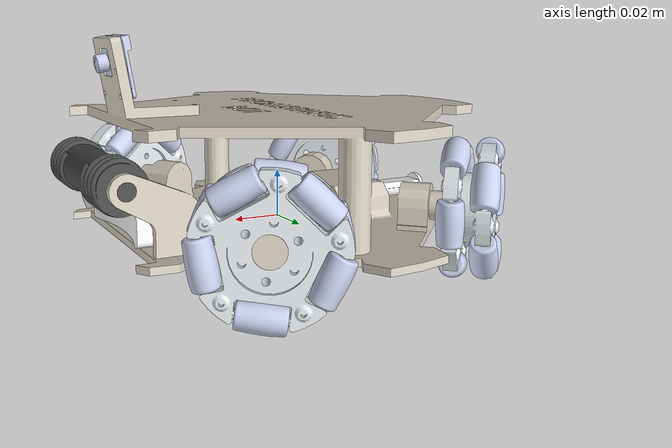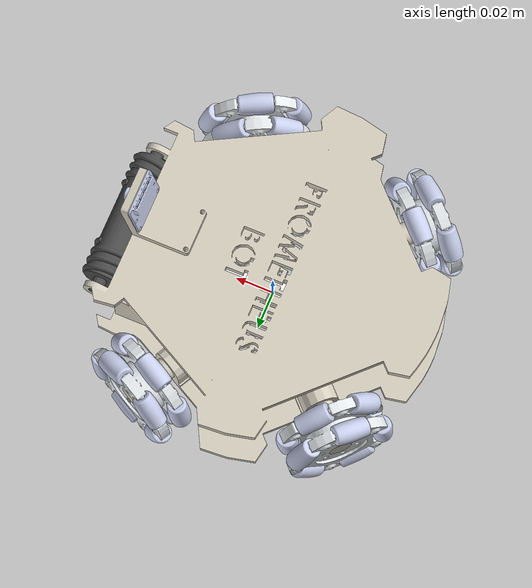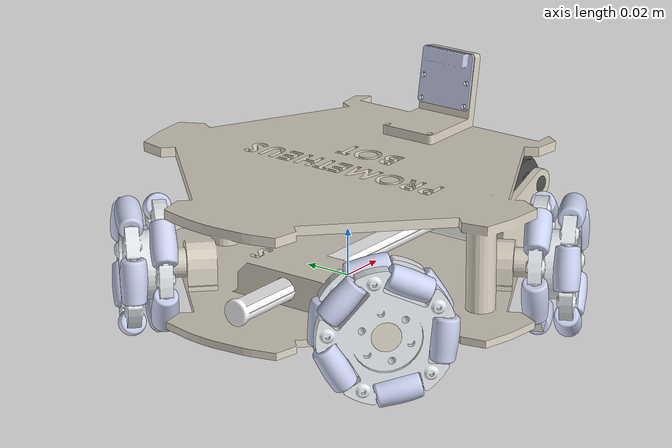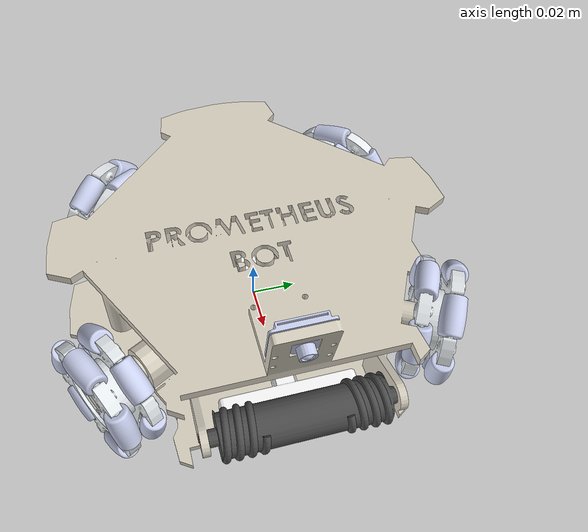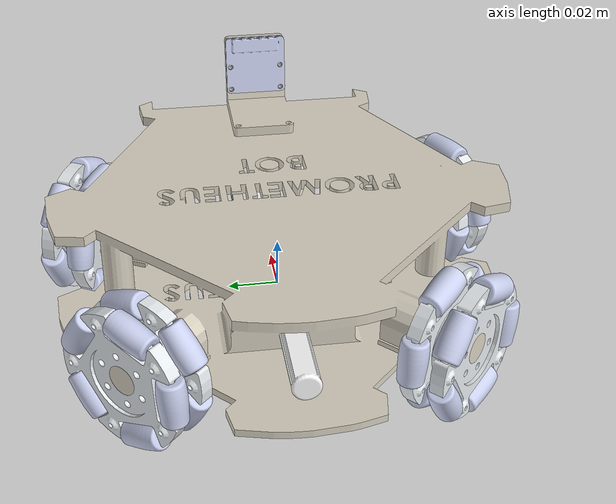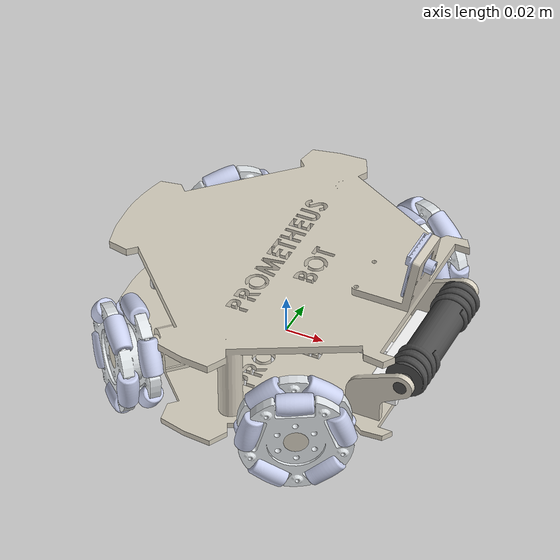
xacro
<?xml version="1.0" encoding="utf-8"?>
<robot
  name="prometheus_final" xmlns:xacro="http://www.ros.org/wiki/xacro">

  <!--Gazebo ROS Control Plugin-->
  <gazebo>
    <plugin name="gazebo_ros_control" filename="libgazebo_ros_control.so">
      <robotNamespace>prometheus_final</robotNamespace>
    </plugin>
    <!--BASE LINK SETTING  -->
  <plugin name="omni_plannar_steering" filename="libgazebo_ros_planar_move.so">
      <commandTopic>cmd_vel</commandTopic>
      <odometryTopic>odom</odometryTopic>
      <odometryFrame>odom</odometryFrame>
      <odometryRate>20.0</odometryRate>
      <robotBaseFrame>base_link</robotBaseFrame>
  </plugin>
  </gazebo>
  <!--BASE LINK SETTING-->
  <link
    name="base_link">
    <inertial>
      <origin
        xyz="-0.00350048179561457 -8.82625420624006E-05 0.0208952595374823"
        rpy="0 0 0" />
      <mass
        value="1.28487468500406" />
      <inertia
        ixx="0.00162139959850944"
        ixy="1.09782114163103E-07"
        ixz="1.64762548607904E-05"
        iyy="0.00167009509390206"
        iyz="2.53483283598115E-08"
        izz="0.00325167012714563" />
    </inertial>
    <visual>
      <origin
        xyz="0 0 0"
        rpy="0 0 0" />
      <geometry>
        <mesh
          filename="package://prometheus_final/meshes/base_link.STL" />
      </geometry>
      <material
        name="">
        <color
          rgba="0.843137254901961 0.815686274509804 0.752941176470588 1" />
      </material>
    </visual>
    <collision>
      <origin
        xyz="0 0 0"
        rpy="0 0 0" />
      <geometry>
        <mesh
          filename="package://prometheus_final/meshes/base_link.STL" />
      </geometry>
    </collision>
  </link>

  <!--RIGHT FRONT LINK SETTINGS-->
  <link
    name="rf_wheel">
    <inertial>
      <origin
        xyz="-5.130618152549E-14 -0.00900489911686289 1.32199806657241E-13"
        rpy="0 0 0" />
      <mass
        value="0.0389563583196813" />
      <inertia
        ixx="6.96753570378058E-06"
        ixy="-1.3679582098157E-19"
        ixz="5.62165614913027E-20"
        iyy="1.37135800312478E-05"
        iyz="-5.94756856680412E-20"
        izz="6.96753570378055E-06" />
    </inertial>
    <visual>
      <origin
        xyz="0 0 0"
        rpy="0 0 0" />
      <geometry>
        <mesh
          filename="package://prometheus_final/meshes/rf_wheel.STL" />
      </geometry>
      <material
        name="">
        <color
          rgba="0.898039215686275 0.917647058823529 0.929411764705882 1" />
      </material>
    </visual>
    <collision>
      <origin
        xyz="0 0 0"
        rpy="0 0 0" />
      <geometry>
        <mesh
          filename="package://prometheus_final/meshes/rf_wheel.STL" />
      </geometry>
    </collision>
  </link>
  <joint
    name="rf_joint"
    type="continuous">
    <origin
      xyz="0.0446476694394124 -0.0818269917959932 0.00899999999994602"
      rpy="0 0 -2.65290046303138" />
    <parent
      link="base_link" />
    <child
      link="rf_wheel" />
    <axis
      xyz="0 1 0" />
  </joint>
  <!--RIGHT FRONT WHEELS ROLLERS-->
  <link
    name="rf_roller_1">
    <inertial>
      <origin
        xyz="-2.19774625290214E-07 -0.000147339529491142 -4.60670548013686E-07"
        rpy="0 0 0" />
      <mass
        value="0.00139539341760775" />
      <inertia
        ixx="4.54070236634262E-08"
        ixy="-1.33944200874802E-12"
        ixz="-1.11184567600862E-11"
        iyy="2.13340721674892E-08"
        iyz="-5.08868938614119E-13"
        izz="4.53962621357603E-08" />
    </inertial>
    <visual>
      <origin
        xyz="0 0 0"
        rpy="0 0 0" />
      <geometry>
        <mesh
          filename="package://prometheus_final/meshes/rf_roller_1.STL" />
      </geometry>
      <material
        name="">
        <color
          rgba="0.796078431372549 0.823529411764706 0.937254901960784 1" />
      </material>
    </visual>
    <collision>
      <origin
        xyz="0 0 0"
        rpy="0 0 0" />
      <geometry>
        <mesh
          filename="package://prometheus_final/meshes/rf_roller_1.STL" />
      </geometry>
    </collision>
  </link>
  <joint
    name="rf_roller_1j"
    type="continuous">
    <origin
      xyz="-0.021524 -0.00275 0.0076149"
      rpy="-1.2307 0 1.5708" />
    <parent
      link="rf_wheel" />
    <child
      link="rf_roller_1" />
    <axis
      xyz="0 -1 0" />
  </joint>
  <link
    name="rf_roller_2">
    <inertial>
      <origin
        xyz="-1.0112327862577E-07 -0.000147338253197862 5.21745965931242E-07"
        rpy="0 0 0" />
      <mass
        value="0.00139539320014803" />
      <inertia
        ixx="4.5414010770903E-08"
        ixy="8.53165296361186E-13"
        ixz="4.89825446118662E-13"
        iyy="2.13340725356041E-08"
        iyz="1.21294309521856E-12"
        izz="4.53893457380149E-08" />
    </inertial>
    <visual>
      <origin
        xyz="0 0 0"
        rpy="0 0 0" />
      <geometry>
        <mesh
          filename="package://prometheus_final/meshes/rf_roller_2.STL" />
      </geometry>
      <material
        name="">
        <color
          rgba="0.796078431372549 0.823529411764706 0.937254901960784 1" />
      </material>
    </visual>
    <collision>
      <origin
        xyz="0 0 0"
        rpy="0 0 0" />
      <geometry>
        <mesh
          filename="package://prometheus_final/meshes/rf_roller_2.STL" />
      </geometry>
    </collision>
  </link>
  <joint
    name="rf_roller_2j"
    type="continuous">
    <origin
      xyz="-0.0138934086520441 -0.00275000000000473 -0.0181171202364986"
      rpy="-2.48738422080527 0 1.57079632679491" />
    <parent
      link="rf_wheel" />
    <child
      link="rf_roller_2" />
    <axis
      xyz="0 -1 0" />
  </joint>
  <link
    name="rf_roller_3">
    <inertial>
      <origin
        xyz="-3.60904993529365E-07 -0.000147338301006078 -3.78911165679896E-07"
        rpy="0 0 0" />
      <mass
        value="0.00139539409779762" />
      <inertia
        ixx="4.53991390499127E-08"
        ixy="-1.45967790069784E-12"
        ixz="-1.20945100872979E-11"
        iyy="2.13340839309074E-08"
        iyz="-5.73483635357382E-14"
        izz="4.54042338686752E-08" />
    </inertial>
    <visual>
      <origin
        xyz="0 0 0"
        rpy="0 0 0" />
      <geometry>
        <mesh
          filename="package://prometheus_final/meshes/rf_roller_3.STL" />
      </geometry>
      <material
        name="">
        <color
          rgba="0.796078431372549 0.823529411764706 0.937254901960784 1" />
      </material>
    </visual>
    <collision>
      <origin
        xyz="0 0 0"
        rpy="0 0 0" />
      <geometry>
        <mesh
          filename="package://prometheus_final/meshes/rf_roller_3.STL" />
      </geometry>
    </collision>
  </link>
  <joint
    name="rf_roller_3j"
    type="continuous">
    <origin
      xyz="0.012937 -0.00275 -0.018812"
      rpy="2.5187 0.23999 1.4017" />
    <parent
      link="rf_wheel" />
    <child
      link="rf_roller_3" />
    <axis
      xyz="0 -1 0" />
  </joint>
  <link
    name="rf_roller_4">
    <inertial>
      <origin
        xyz="-5.94431460720912E-08 -0.000147340426069675 5.27040239700627E-07"
        rpy="0 0 0" />
      <mass
        value="0.00139539437810918" />
      <inertia
        ixx="4.54140436406743E-08"
        ixy="9.02091953082696E-13"
        ixz="-4.71522420103581E-13"
        iyy="2.13340729089582E-08"
        iyz="1.15612066343412E-12"
        izz="4.53892659018487E-08" />
    </inertial>
    <visual>
      <origin
        xyz="0 0 0"
        rpy="0 0 0" />
      <geometry>
        <mesh
          filename="package://prometheus_final/meshes/rf_roller_4.STL" />
      </geometry>
      <material
        name="">
        <color
          rgba="0.796078431372549 0.823529411764706 0.937254901960784 1" />
      </material>
    </visual>
    <collision>
      <origin
        xyz="0 0 0"
        rpy="0 0 0" />
      <geometry>
        <mesh
          filename="package://prometheus_final/meshes/rf_roller_4.STL" />
      </geometry>
    </collision>
  </link>
  <joint
    name="rf_roller_4j"
    type="continuous">
    <origin
      xyz="0.021889 -0.00275 0.0064907"
      rpy="1.8591 0 -1.5708" />
    <parent
      link="rf_wheel" />
    <child
      link="rf_roller_4" />
    <axis
      xyz="0 -1 0" />
  </joint>
  <link
    name="rf_roller_5">
    <inertial>
      <origin
        xyz="3.00392523938653E-07 -0.000147338673224431 4.14398274140027E-07"
        rpy="0 0 0" />
      <mass
        value="0.00139539350773946" />
      <inertia
        ixx="4.54026625777786E-08"
        ixy="1.4151249697577E-12"
        ixz="-1.23035423408623E-11"
        iyy="2.13340777554219E-08"
        iyz="2.57363369916583E-13"
        izz="4.54006605767438E-08" />
    </inertial>
    <visual>
      <origin
        xyz="0 0 0"
        rpy="0 0 0" />
      <geometry>
        <mesh
          filename="package://prometheus_final/meshes/rf_roller_5.STL" />
      </geometry>
      <material
        name="">
        <color
          rgba="0.796078431372549 0.823529411764706 0.937254901960784 1" />
      </material>
    </visual>
    <collision>
      <origin
        xyz="0 0 0"
        rpy="0 0 0" />
      <geometry>
        <mesh
          filename="package://prometheus_final/meshes/rf_roller_5.STL" />
      </geometry>
    </collision>
  </link>
  <joint
    name="rf_roller_5j"
    type="continuous">
    <origin
      xyz="0.00059103 -0.00275 0.022823"
      rpy="0.02589 0 1.5708" />
    <parent
      link="rf_wheel" />
    <child
      link="rf_roller_5" />
    <axis
      xyz="0 -1 0" />
  </joint>
  <link
    name="rf_roller_6">
    <inertial>
      <origin
        xyz="-2.24206414115025E-07 0.000147338882780845 -4.76189316020448E-07"
        rpy="0 0 0" />
      <mass
        value="0.00139539316359108" />
      <inertia
        ixx="4.54121274202642E-08"
        ixy="-5.13618512320941E-13"
        ixz="-6.55134727207E-12"
        iyy="2.13340693516855E-08"
        iyz="1.37782446977762E-12"
        izz="4.53911967490346E-08" />
    </inertial>
    <visual>
      <origin
        xyz="0 0 0"
        rpy="0 0 0" />
      <geometry>
        <mesh
          filename="package://prometheus_final/meshes/rf_roller_6.STL" />
      </geometry>
      <material
        name="">
        <color
          rgba="0.796078431372549 0.823529411764706 0.937254901960784 1" />
      </material>
    </visual>
    <collision>
      <origin
        xyz="0 0 0"
        rpy="0 0 0" />
      <geometry>
        <mesh
          filename="package://prometheus_final/meshes/rf_roller_6.STL" />
      </geometry>
    </collision>
  </link>
  <joint
    name="rf_roller_6j"
    type="continuous">
    <origin
      xyz="-0.012937 -0.01525 0.018812"
      rpy="-0.60243 0 1.5708" />
    <parent
      link="rf_wheel" />
    <child
      link="rf_roller_6" />
    <axis
      xyz="0 -1 0" />
  </joint>
  <link
    name="rf_roller_7">
    <inertial>
      <origin
        xyz="2.24172873514172E-07 0.000147339603903535 -4.58221249416413E-07"
        rpy="0 0 0" />
      <mass
        value="0.00139539237686729" />
      <inertia
        ixx="4.54060851311822E-08"
        ixy="-1.36162812988169E-12"
        ixz="1.14928719505028E-11"
        iyy="2.13340594594364E-08"
        iyz="4.63979733799799E-13"
        izz="4.53971630630933E-08" />
    </inertial>
    <visual>
      <origin
        xyz="0 0 0"
        rpy="0 0 0" />
      <geometry>
        <mesh
          filename="package://prometheus_final/meshes/rf_roller_7.STL" />
      </geometry>
      <material
        name="">
        <color
          rgba="0.796078431372549 0.823529411764706 0.937254901960784 1" />
      </material>
    </visual>
    <collision>
      <origin
        xyz="0 0 0"
        rpy="0 0 0" />
      <geometry>
        <mesh
          filename="package://prometheus_final/meshes/rf_roller_7.STL" />
      </geometry>
    </collision>
  </link>
  <joint
    name="rf_roller_7j"
    type="continuous">
    <origin
      xyz="-0.021889 -0.01525 -0.0064907"
      rpy="-1.8591 0 1.5708" />
    <parent
      link="rf_wheel" />
    <child
      link="rf_roller_7" />
    <axis
      xyz="0 -1 0" />
  </joint>
  <link
    name="rf_roller_8">
    <inertial>
      <origin
        xyz="-3.84714740619962E-07 0.000147339912727418 -3.68398216099575E-07"
        rpy="0 0 0" />
      <mass
        value="0.00139539480329269" />
      <inertia
        ixx="4.54042294858E-08"
        ixy="5.56107421041032E-14"
        ixz="-1.21360896406017E-11"
        iyy="2.13340802641008E-08"
        iyz="1.46957323599683E-12"
        izz="4.53991174041401E-08" />
    </inertial>
    <visual>
      <origin
        xyz="0 0 0"
        rpy="0 0 0" />
      <geometry>
        <mesh
          filename="package://prometheus_final/meshes/rf_roller_8.STL" />
      </geometry>
      <material
        name="">
        <color
          rgba="0.796078431372549 0.823529411764706 0.937254901960784 1" />
      </material>
    </visual>
    <collision>
      <origin
        xyz="0 0 0"
        rpy="0 0 0" />
      <geometry>
        <mesh
          filename="package://prometheus_final/meshes/rf_roller_8.STL" />
      </geometry>
    </collision>
  </link>
  <joint
    name="rf_roller_8j"
    type="continuous">
    <origin
      xyz="-0.00059103 -0.01525 -0.022823"
      rpy="-3.1157 0 1.5708" />
    <parent
      link="rf_wheel" />
    <child
      link="rf_roller_8" />
    <axis
      xyz="0 -1 0" />
  </joint>
  <link
    name="rf_roller_9">
    <inertial>
      <origin
        xyz="4.11971687513946E-07 0.000147339837026139 -3.37105088156486E-07"
        rpy="0 0 0" />
      <mass
        value="0.00139539531920026" />
      <inertia
        ixx="4.53966365561195E-08"
        ixy="-1.46298482158066E-12"
        ixz="1.13411512356184E-11"
        iyy="2.13340869654702E-08"
        iyz="-1.03622497362521E-13"
        izz="4.54067294937751E-08" />
    </inertial>
    <visual>
      <origin
        xyz="0 0 0"
        rpy="0 0 0" />
      <geometry>
        <mesh
          filename="package://prometheus_final/meshes/rf_roller_9.STL" />
      </geometry>
      <material
        name="">
        <color
          rgba="0.796078431372549 0.823529411764706 0.937254901960784 1" />
      </material>
    </visual>
    <collision>
      <origin
        xyz="0 0 0"
        rpy="0 0 0" />
      <geometry>
        <mesh
          filename="package://prometheus_final/meshes/rf_roller_9.STL" />
      </geometry>
    </collision>
  </link>
  <joint
    name="rf_roller_9j"
    type="continuous">
    <origin
      xyz="0.021524 -0.01525 -0.0076149"
      rpy="1.9108 0 1.5708" />
    <parent
      link="rf_wheel" />
    <child
      link="rf_roller_9" />
    <axis
      xyz="0 -1 0" />
  </joint>
  <link
    name="rf_roller_10">
    <inertial>
      <origin
        xyz="3.65247850991901E-08 0.00014733817321276 5.23246340394801E-07"
        rpy="0 0 0" />
      <mass
        value="0.00139539458442033" />
      <inertia
        ixx="4.54140128786662E-08"
        ixy="9.3155322354689E-13"
        ixz="1.16747613732194E-12"
        iyy="2.13340901435685E-08"
        iyz="-1.12530735687212E-12"
        izz="4.53893827266731E-08" />
    </inertial>
    <visual>
      <origin
        xyz="0 0 0"
        rpy="0 0 0" />
      <geometry>
        <mesh
          filename="package://prometheus_final/meshes/rf_roller_10.STL" />
      </geometry>
      <material
        name="">
        <color
          rgba="0.796078431372549 0.823529411764706 0.937254901960784 1" />
      </material>
    </visual>
    <collision>
      <origin
        xyz="0 0 0"
        rpy="0 0 0" />
      <geometry>
        <mesh
          filename="package://prometheus_final/meshes/rf_roller_10.STL" />
      </geometry>
    </collision>
  </link>
  <joint
    name="rf_roller_10j"
    type="continuous">
    <origin
      xyz="0.013893 -0.01525 0.018117"
      rpy="0.65421 0 1.5708" />
    <parent
      link="rf_wheel" />
    <child
      link="rf_roller_10" />
    <axis
      xyz="0 -1 0" />
  </joint>
  <!--LEFT FRONT LINK SETTINGS-->
  <link
    name="lf_wheel">
    <inertial>
      <origin
        xyz="3.53342355374764E-13 -0.00900489911745525 -3.03562730508133E-13"
        rpy="0 0 0" />
      <mass
        value="0.0389563583196813" />
      <inertia
        ixx="6.96753570378056E-06"
        ixy="7.83505476210228E-21"
        ixz="5.71206203225495E-20"
        iyy="1.37135800312478E-05"
        iyz="-6.74076115452939E-21"
        izz="6.96753570378056E-06" />
    </inertial>
    <visual>
      <origin
        xyz="0 0 0"
        rpy="0 0 0" />
      <geometry>
        <mesh
          filename="package://prometheus_final/meshes/lf_wheel.STL" />
      </geometry>
      <material
        name="">
        <color
          rgba="0.898039215686275 0.917647058823529 0.929411764705882 1" />
      </material>
    </visual>
    <collision>
      <origin
        xyz="0 0 0"
        rpy="0 0 0" />
      <geometry>
        <mesh
          filename="package://prometheus_final/meshes/lf_wheel.STL" />
      </geometry>
    </collision>
  </link>
  <joint
    name="lf_joint"
    type="continuous">
    <origin
      xyz="0.0446476694394707 0.0816033915726884 0.00900000000000112"
      rpy="0 0 -0.488692190558411" />
    <parent
      link="base_link" />
    <child
      link="lf_wheel" />
    <axis
      xyz="0 1 0" />
  </joint>
  <!--LEFT FRONT WHEEL ROLLERS-->
  <link
    name="lf_roller_1">
    <inertial>
      <origin
        xyz="-2.23983531777439E-07 -0.000147338259847404 -4.71888230269002E-07"
        rpy="0 0 0" />
      <mass
        value="0.00139539320327497" />
      <inertia
        ixx="4.54062538059696E-08"
        ixy="-1.38133537583309E-12"
        ixz="-1.14553099067102E-11"
        iyy="2.13340741537148E-08"
        iyz="-4.85304820499261E-13"
        izz="4.53970898490008E-08" />
    </inertial>
    <visual>
      <origin
        xyz="0 0 0"
        rpy="0 0 0" />
      <geometry>
        <mesh
          filename="package://prometheus_final/meshes/lf_roller_1.STL" />
      </geometry>
      <material
        name="">
        <color
          rgba="0.796078431372549 0.823529411764706 0.937254901960784 1" />
      </material>
    </visual>
    <collision>
      <origin
        xyz="0 0 0"
        rpy="0 0 0" />
      <geometry>
        <mesh
          filename="package://prometheus_final/meshes/lf_roller_1.STL" />
      </geometry>
    </collision>
  </link>
  <joint
    name="lf_roller_1j"
    type="continuous">
    <origin
      xyz="-0.0156999286975126 -0.00274999999999995 0.0165761602468557"
      rpy="-0.758256821058521 0 1.5707963267949" />
    <parent
      link="lf_wheel" />
    <child
      link="lf_roller_1" />
    <axis
      xyz="0 -1 0" />
  </joint>
  <link
    name="lf_roller_2">
    <inertial>
      <origin
        xyz="6.09835875409193E-08 -0.000147340264213591 -5.31926638132341E-07"
        rpy="0 0 0" />
      <mass
        value="0.00139539473216151" />
      <inertia
        ixx="4.54140653184597E-08"
        ixy="-9.06279329768249E-13"
        ixz="-4.66345053331612E-13"
        iyy="2.13340766254018E-08"
        iyz="-1.16463834938261E-12"
        izz="4.53892694934369E-08" />
    </inertial>
    <visual>
      <origin
        xyz="0 0 0"
        rpy="0 0 0" />
      <geometry>
        <mesh
          filename="package://prometheus_final/meshes/lf_roller_2.STL" />
      </geometry>
      <material
        name="">
        <color
          rgba="0.796078431372549 0.823529411764706 0.937254901960784 1" />
      </material>
    </visual>
    <collision>
      <origin
        xyz="0 0 0"
        rpy="0 0 0" />
      <geometry>
        <mesh
          filename="package://prometheus_final/meshes/lf_roller_2.STL" />
      </geometry>
    </collision>
  </link>
  <joint
    name="lf_roller_2j"
    type="continuous">
    <origin
      xyz="-0.0206164099959305 -0.00274999999999986 -0.00980920427537604"
      rpy="-2.01489388249438 0 1.5707963267949" />
    <parent
      link="lf_wheel" />
    <child
      link="lf_roller_2" />
    <axis
      xyz="0 -1 0" />
  </joint>
  <link
    name="lf_roller_3">
    <inertial>
      <origin
        xyz="5.06713228903832E-07 -0.000147338910557238 7.34481696851308E-08"
        rpy="0 0 0" />
      <mass
        value="0.00139539309324117" />
      <inertia
        ixx="4.53893175610577E-08"
        ixy="1.16400570424861E-12"
        ixz="-3.43935044062127E-13"
        iyy="2.13340713590343E-08"
        iyz="-8.48749353651685E-13"
        izz="4.5413983167911E-08" />
    </inertial>
    <visual>
      <origin
        xyz="0 0 0"
        rpy="0 0 0" />
      <geometry>
        <mesh
          filename="package://prometheus_final/meshes/lf_roller_3.STL" />
      </geometry>
      <material
        name="">
        <color
          rgba="0.796078431372549 0.823529411764706 0.937254901960784 1" />
      </material>
    </visual>
    <collision>
      <origin
        xyz="0 0 0"
        rpy="0 0 0" />
      <geometry>
        <mesh
          filename="package://prometheus_final/meshes/lf_roller_3.STL" />
      </geometry>
    </collision>
  </link>
  <joint
    name="lf_roller_3j"
    type="continuous">
    <origin
      xyz="0.0029582865940241 -0.00274999999999989 -0.0226385818916302"
      rpy="3.01134981689428 -0.068205684093041 1.57972303921801" />
    <parent
      link="lf_wheel" />
    <child
      link="lf_roller_3" />
    <axis
      xyz="0 -1 0" />
  </joint>
  <link
    name="lf_roller_4">
    <inertial>
      <origin
        xyz="-2.94458208621728E-07 -0.000147340487392178 4.55379331035233E-07"
        rpy="0 0 0" />
      <mass
        value="0.00139539666748033" />
      <inertia
        ixx="4.54088054612058E-08"
        ixy="2.47047768836041E-13"
        ixz="1.02329048156636E-11"
        iyy="2.13340962106202E-08"
        iyz="1.45558263684776E-12"
        izz="4.53945923266177E-08" />
    </inertial>
    <visual>
      <origin
        xyz="0 0 0"
        rpy="0 0 0" />
      <geometry>
        <mesh
          filename="package://prometheus_final/meshes/lf_roller_4.STL" />
      </geometry>
      <material
        name="">
        <color
          rgba="0.796078431372549 0.823529411764706 0.937254901960784 1" />
      </material>
    </visual>
    <collision>
      <origin
        xyz="0 0 0"
        rpy="0 0 0" />
      <geometry>
        <mesh
          filename="package://prometheus_final/meshes/lf_roller_4.STL" />
      </geometry>
    </collision>
  </link>
  <joint
    name="lf_roller_4j"
    type="continuous">
    <origin
      xyz="0.0224447316595033 -0.00274999999999997 -0.0041822087907489"
      rpy="1.75501730181332 0 1.57079632679488" />
    <parent
      link="lf_wheel" />
    <child
      link="lf_roller_4" />
    <axis
      xyz="0 -1 0" />
  </joint>
  <link
    name="lf_roller_5">
    <inertial>
      <origin
        xyz="2.71609476687473E-07 -0.000147339699725385 4.81130514942696E-07"
        rpy="0 0 0" />
      <mass
        value="0.00139539574968426" />
      <inertia
        ixx="4.54048587135436E-08"
        ixy="1.4514290827857E-12"
        ixz="-1.20259903282334E-11"
        iyy="2.13340865732076E-08"
        iyz="4.10818361691801E-13"
        izz="4.53985546275884E-08" />
    </inertial>
    <visual>
      <origin
        xyz="0 0 0"
        rpy="0 0 0" />
      <geometry>
        <mesh
          filename="package://prometheus_final/meshes/lf_roller_5.STL" />
      </geometry>
      <material
        name="">
        <color
          rgba="0.796078431372549 0.823529411764706 0.937254901960784 1" />
      </material>
    </visual>
    <collision>
      <origin
        xyz="0 0 0"
        rpy="0 0 0" />
      <geometry>
        <mesh
          filename="package://prometheus_final/meshes/lf_roller_5.STL" />
      </geometry>
    </collision>
  </link>
  <joint
    name="lf_roller_5j"
    type="continuous">
    <origin
      xyz="0.0109133204399212 -0.00274999999999995 0.020053834710899"
      rpy="0.498380240377435 0 1.5707963267949" />
    <parent
      link="lf_wheel" />
    <child
      link="lf_roller_5" />
    <axis
      xyz="0 -1 0" />
  </joint>
  <link
    name="lf_roller_6">
    <inertial>
      <origin
        xyz="-3.9926691938752E-07 0.000147336301084378 -3.80752566461751E-07"
        rpy="0 0 0" />
      <mass
        value="0.00139539533686545" />
      <inertia
        ixx="4.54042363405629E-08"
        ixy="5.62238169144401E-14"
        ixz="-1.21570728550476E-11"
        iyy="2.13340824823764E-08"
        iyz="1.47895570605167E-12"
        izz="4.5399123192049E-08" />
    </inertial>
    <visual>
      <origin
        xyz="0 0 0"
        rpy="0 0 0" />
      <geometry>
        <mesh
          filename="package://prometheus_final/meshes/lf_roller_6.STL" />
      </geometry>
      <material
        name="">
        <color
          rgba="0.796078431372549 0.823529411764706 0.937254901960784 1" />
      </material>
    </visual>
    <collision>
      <origin
        xyz="0 0 0"
        rpy="0 0 0" />
      <geometry>
        <mesh
          filename="package://prometheus_final/meshes/lf_roller_6.STL" />
      </geometry>
    </collision>
  </link>
  <joint
    name="lf_roller_6j"
    type="continuous">
    <origin
      xyz="-0.0029582914855829 -0.0152499897676238 0.0226385887340916"
      rpy="-0.129938290340481 0 1.5707963267949" />
    <parent
      link="lf_wheel" />
    <child
      link="lf_roller_6" />
    <axis
      xyz="0 -1 0" />
  </joint>
  <link
    name="lf_roller_7">
    <inertial>
      <origin
        xyz="3.86995565482273E-07 0.00014734528483562 -3.2680508937899E-07"
        rpy="0 0 0" />
      <mass
        value="0.00139539377848831" />
      <inertia
        ixx="4.53966040699277E-08"
        ixy="-1.42682709324785E-12"
        ixz="1.12825662192819E-11"
        iyy="2.13340770300682E-08"
        iyz="-1.065136399151E-13"
        izz="4.54066963836087E-08" />
    </inertial>
    <visual>
      <origin
        xyz="0 0 0"
        rpy="0 0 0" />
      <geometry>
        <mesh
          filename="package://prometheus_final/meshes/lf_roller_7.STL" />
      </geometry>
      <material
        name="">
        <color
          rgba="0.796078431372549 0.823529411764706 0.937254901960784 1" />
      </material>
    </visual>
    <collision>
      <origin
        xyz="0 0 0"
        rpy="0 0 0" />
      <geometry>
        <mesh
          filename="package://prometheus_final/meshes/lf_roller_7.STL" />
      </geometry>
    </collision>
  </link>
  <joint
    name="lf_roller_7j"
    type="continuous">
    <origin
      xyz="-0.0224447365510626 -0.0152499897676239 0.00418221563321131"
      rpy="-1.38657535177643 0 1.57079632679491" />
    <parent
      link="lf_wheel" />
    <child
      link="lf_roller_7" />
    <axis
      xyz="0 -1 0" />
  </joint>
  <link
    name="lf_roller_8">
    <inertial>
      <origin
        xyz="1.99644414888844E-08 0.000147345585474301 5.19797756323714E-07"
        rpy="0 0 0" />
      <mass
        value="0.00139539433702022" />
      <inertia
        ixx="4.54139924750154E-08"
        ixy="9.26341898651297E-13"
        ixz="1.18712265115222E-12"
        iyy="2.13340902762064E-08"
        iyz="-1.11097676144442E-12"
        izz="4.53893903718589E-08" />
    </inertial>
    <visual>
      <origin
        xyz="0 0 0"
        rpy="0 0 0" />
      <geometry>
        <mesh
          filename="package://prometheus_final/meshes/lf_roller_8.STL" />
      </geometry>
      <material
        name="">
        <color
          rgba="0.796078431372549 0.823529411764706 0.937254901960784 1" />
      </material>
    </visual>
    <collision>
      <origin
        xyz="0 0 0"
        rpy="0 0 0" />
      <geometry>
        <mesh
          filename="package://prometheus_final/meshes/lf_roller_8.STL" />
      </geometry>
    </collision>
  </link>
  <joint
    name="lf_roller_8j"
    type="continuous">
    <origin
      xyz="-0.0109133253314825 -0.015249989767624 -0.0200538278684376"
      rpy="-2.64321241321233 0 1.5707963267949" />
    <parent
      link="lf_wheel" />
    <child
      link="lf_roller_8" />
    <axis
      xyz="0 -1 0" />
  </joint>
  <link
    name="lf_roller_9">
    <inertial>
      <origin
        xyz="-2.27899752625049E-07 0.000147337691306329 -4.7972180255984E-07"
        rpy="0 0 0" />
      <mass
        value="0.00139539448981912" />
      <inertia
        ixx="4.54121979419639E-08"
        ixy="-5.22203925734726E-13"
        ixz="-6.55010053816292E-12"
        iyy="2.13340824255313E-08"
        iyz="1.38512618382391E-12"
        izz="4.53911823953326E-08" />
    </inertial>
    <visual>
      <origin
        xyz="0 0 0"
        rpy="0 0 0" />
      <geometry>
        <mesh
          filename="package://prometheus_final/meshes/lf_roller_9.STL" />
      </geometry>
      <material
        name="">
        <color
          rgba="0.796078431372549 0.823529411764706 0.937254901960784 1" />
      </material>
    </visual>
    <collision>
      <origin
        xyz="0 0 0"
        rpy="0 0 0" />
      <geometry>
        <mesh
          filename="package://prometheus_final/meshes/lf_roller_9.STL" />
      </geometry>
    </collision>
  </link>
  <joint
    name="lf_roller_9j"
    type="continuous">
    <origin
      xyz="0.0156999238059492 -0.0152499897676239 -0.0165761534043967"
      rpy="2.38333583253132 0 1.5707963267949" />
    <parent
      link="lf_wheel" />
    <child
      link="lf_roller_9" />
    <axis
      xyz="0 -1 0" />
  </joint>
  <link
    name="lf_roller_10">
    <inertial>
      <origin
        xyz="2.13683138433618E-07 0.000147332004590162 -4.76300018537046E-07"
        rpy="0 0 0" />
      <mass
        value="0.00139539314926649" />
      <inertia
        ixx="4.5406145743595E-08"
        ixy="-1.38728517092104E-12"
        ixz="1.15132961385898E-11"
        iyy="2.1334060815454E-08"
        iyz="4.8128457322342E-13"
        izz="4.53971262848059E-08" />
    </inertial>
    <visual>
      <origin
        xyz="0 0 0"
        rpy="0 0 0" />
      <geometry>
        <mesh
          filename="package://prometheus_final/meshes/lf_roller_10.STL" />
      </geometry>
      <material
        name="">
        <color
          rgba="0.796078431372549 0.823529411764706 0.937254901960784 1" />
      </material>
    </visual>
    <collision>
      <origin
        xyz="0 0 0"
        rpy="0 0 0" />
      <geometry>
        <mesh
          filename="package://prometheus_final/meshes/lf_roller_10.STL" />
      </geometry>
    </collision>
  </link>
  <joint
    name="lf_roller_10j"
    type="continuous">
    <origin
      xyz="0.0206164051043709 -0.0152499897676238 0.00980921111783629"
      rpy="1.12669877109546 0 1.5707963267949" />
    <parent
      link="lf_wheel" />
    <child
      link="lf_roller_10" />
    <axis
      xyz="0 -1 0" />
  </joint>
  <!--RIGHT BACK LINK SETTINGS-->
  <link
    name="rb_wheel">
    <inertial>
      <origin
        xyz="-3.37230243729891E-15 -0.00900489911691322 2.60902410786912E-15"
        rpy="0 0 0" />
      <mass
        value="0.0389563583196813" />
      <inertia
        ixx="6.96753570378059E-06"
        ixy="-1.73641754187132E-20"
        ixz="4.61843438765856E-20"
        iyy="1.37135800312478E-05"
        iyz="-1.38282341950435E-20"
        izz="6.96753570378053E-06" />
    </inertial>
    <visual>
      <origin
        xyz="0 0 0"
        rpy="0 0 0" />
      <geometry>
        <mesh
          filename="package://prometheus_final/meshes/rb_wheel.STL" />
      </geometry>
      <material
        name="">
        <color
          rgba="0.898039215686275 0.917647058823529 0.929411764705882 1" />
      </material>
    </visual>
    <collision>
      <origin
        xyz="0 0 0"
        rpy="0 0 0" />
      <geometry>
        <mesh
          filename="package://prometheus_final/meshes/rb_wheel.STL" />
      </geometry>
    </collision>
  </link>
  <joint
    name="rb_joint"
    type="continuous">
    <origin
      xyz="-0.0642425134965542 -0.0655532449190786 0.00900000000000001"
      rpy="0 0 2.35619449019234" />
    <parent
      link="base_link" />
    <child
      link="rb_wheel" />
    <axis
      xyz="0 -1 0" />
  </joint>
  <!--RIGHT BACK WHEEL ROLLERS-->
  <link
    name="rb_roller_1">
    <inertial>
      <origin
        xyz="-2.40775482593381E-07 -0.000147339202694038 -4.77523948827496E-07"
        rpy="0 0 0" />
      <mass
        value="0.00139539490595951" />
      <inertia
        ixx="4.54062734833563E-08"
        ixy="-1.39625710079431E-12"
        ixz="-1.15184398663045E-11"
        iyy="2.13340849814551E-08"
        iyz="-4.82616379173692E-13"
        izz="4.53971072215902E-08" />
    </inertial>
    <visual>
      <origin
        xyz="0 0 0"
        rpy="0 0 0" />
      <geometry>
        <mesh
          filename="package://prometheus_final/meshes/rb_roller_1.STL" />
      </geometry>
      <material
        name="">
        <color
          rgba="0.796078431372549 0.823529411764706 0.937254901960784 1" />
      </material>
    </visual>
    <collision>
      <origin
        xyz="0 0 0"
        rpy="0 0 0" />
      <geometry>
        <mesh
          filename="package://prometheus_final/meshes/rb_roller_1.STL" />
      </geometry>
    </collision>
  </link>
  <joint
    name="rb_roller_1j"
    type="continuous">
    <origin
      xyz="-0.00912720895744017 -0.00274999999999997 0.0209272766093343"
      rpy="-0.411267823025159 0 1.57079632679489" />
    <parent
      link="rb_wheel" />
    <child
      link="rb_roller_1" />
    <axis
      xyz="0 -1 0" />
  </joint>
  <link
    name="rb_roller_2">
    <inertial>
      <origin
        xyz="6.47419346397338E-08 -0.000147341423590464 -5.4857136790043E-07"
        rpy="0 0 0" />
      <mass
        value="0.0013953958853924" />
      <inertia
        ixx="4.54141248053791E-08"
        ixy="-9.19681200932954E-13"
        ixz="-4.48379522719565E-13"
        iyy="2.13340779236915E-08"
        iyz="-1.18570330840807E-12"
        izz="4.53892252780573E-08" />
    </inertial>
    <visual>
      <origin
        xyz="0 0 0"
        rpy="0 0 0" />
      <geometry>
        <mesh
          filename="package://prometheus_final/meshes/rb_roller_2.STL" />
      </geometry>
      <material
        name="">
        <color
          rgba="0.796078431372549 0.823529411764706 0.937254901960784 1" />
      </material>
    </visual>
    <collision>
      <origin
        xyz="0 0 0"
        rpy="0 0 0" />
      <geometry>
        <mesh
          filename="package://prometheus_final/meshes/rb_roller_2.STL" />
      </geometry>
    </collision>
  </link>
  <joint
    name="rb_roller_2j"
    type="continuous">
    <origin
      xyz="-0.0227234854666781 -0.00275000000000001 -0.00221360743629348"
      rpy="-1.66790488446102 0 1.5707963267949" />
    <parent
      link="rb_wheel" />
    <child
      link="rb_roller_2" />
    <axis
      xyz="0 -1 0" />
  </joint>
  <link
    name="rb_roller_3">
    <inertial>
      <origin
        xyz="5.22491399281705E-07 -0.000147338342567811 4.47702422357033E-08"
        rpy="0 0 0" />
      <mass
        value="0.00139539379341495" />
      <inertia
        ixx="4.53893995451717E-08"
        ixy="1.12599706380334E-12"
        ixz="1.33159685208739E-12"
        iyy="2.13340798780879E-08"
        iyz="-9.3702194958546E-13"
        izz="4.54139633161862E-08" />
    </inertial>
    <visual>
      <origin
        xyz="0 0 0"
        rpy="0 0 0" />
      <geometry>
        <mesh
          filename="package://prometheus_final/meshes/rb_roller_3.STL" />
      </geometry>
      <material
        name="">
        <color
          rgba="0.796078431372549 0.823529411764706 0.937254901960784 1" />
      </material>
    </visual>
    <collision>
      <origin
        xyz="0 0 0"
        rpy="0 0 0" />
      <geometry>
        <mesh
          filename="package://prometheus_final/meshes/rb_roller_3.STL" />
      </geometry>
    </collision>
  </link>
  <joint
    name="rb_roller_3j"
    type="continuous">
    <origin
      xyz="-0.0049166774038287 -0.00274999999999999 -0.0222953612427142"
      rpy="-2.92454194589694 0 1.5707963267949" />
    <parent
      link="rb_wheel" />
    <child
      link="rb_roller_3" />
    <axis
      xyz="0 -1 0" />
  </joint>
  <link
    name="rb_roller_4">
    <inertial>
      <origin
        xyz="-3.19685325593511E-07 -0.000147340086419256 4.46837771679587E-07"
        rpy="0 0 0" />
      <mass
        value="0.00139539573465183" />
      <inertia
        ixx="4.54087307963999E-08"
        ixy="2.32000483295897E-13"
        ixz="1.02547759372744E-11"
        iyy="2.133408500203E-08"
        iyz="1.48236417751278E-12"
        izz="4.53946627123606E-08" />
    </inertial>
    <visual>
      <origin
        xyz="0 0 0"
        rpy="0 0 0" />
      <geometry>
        <mesh
          filename="package://prometheus_final/meshes/rb_roller_4.STL" />
      </geometry>
      <material
        name="">
        <color
          rgba="0.796078431372549 0.823529411764706 0.937254901960784 1" />
      </material>
    </visual>
    <collision>
      <origin
        xyz="0 0 0"
        rpy="0 0 0" />
      <geometry>
        <mesh
          filename="package://prometheus_final/meshes/rb_roller_4.STL" />
      </geometry>
    </collision>
  </link>
  <joint
    name="rb_roller_4j"
    type="continuous">
    <origin
      xyz="0.019684811719396 -0.00274999999999995 -0.011565683603162"
      rpy="2.10200629984671 0 1.5707963267949" />
    <parent
      link="rb_wheel" />
    <child
      link="rb_roller_4" />
    <axis
      xyz="0 -1 0" />
  </joint>
  <link
    name="rb_roller_5">
    <inertial>
      <origin
        xyz="2.43886670433721E-07 -0.000147338790790416 4.64719564566285E-07"
        rpy="0 0 0" />
      <mass
        value="0.0013953925987374" />
      <inertia
        ixx="4.5404800325625E-08"
        ixy="1.41304362340863E-12"
        ixz="-1.19229617399793E-11"
        iyy="2.13340641367703E-08"
        iyz="4.0678431865469E-13"
        izz="4.539850666648E-08" />
    </inertial>
    <visual>
      <origin
        xyz="0 0 0"
        rpy="0 0 0" />
      <geometry>
        <mesh
          filename="package://prometheus_final/meshes/rb_roller_5.STL" />
      </geometry>
      <material
        name="">
        <color
          rgba="0.796078431372549 0.823529411764706 0.937254901960784 1" />
      </material>
    </visual>
    <collision>
      <origin
        xyz="0 0 0"
        rpy="0 0 0" />
      <geometry>
        <mesh
          filename="package://prometheus_final/meshes/rb_roller_5.STL" />
      </geometry>
    </collision>
  </link>
  <joint
    name="rb_roller_5j"
    type="continuous">
    <origin
      xyz="0.0170825601085604 -0.00274999999999994 0.0151473756728321"
      rpy="0.845369238410752 0 1.5707963267949" />
    <parent
      link="rb_wheel" />
    <child
      link="rb_roller_5" />
    <axis
      xyz="0 -1 0" />
  </joint>
  <link
    name="rb_roller_6">
    <inertial>
      <origin
        xyz="-3.90045319882681E-07 0.000147346202653435 -3.44880671951375E-07"
        rpy="0 0 0" />
      <mass
        value="0.00139539422583446" />
      <inertia
        ixx="4.54042045993263E-08"
        ixy="6.60346474867806E-14"
        ixz="-1.2117491413102E-11"
        iyy="2.13340789893279E-08"
        iyz="1.47899254052615E-12"
        izz="4.53991625020494E-08" />
    </inertial>
    <visual>
      <origin
        xyz="0 0 0"
        rpy="0 0 0" />
      <geometry>
        <mesh
          filename="package://prometheus_final/meshes/rb_roller_6.STL" />
      </geometry>
      <material
        name="">
        <color
          rgba="0.796078431372549 0.823529411764706 0.937254901960784 1" />
      </material>
    </visual>
    <collision>
      <origin
        xyz="0 0 0"
        rpy="0 0 0" />
      <geometry>
        <mesh
          filename="package://prometheus_final/meshes/rb_roller_6.STL" />
      </geometry>
    </collision>
  </link>
  <joint
    name="rb_roller_6j"
    type="continuous">
    <origin
      xyz="0.00491668114369825 -0.0152500039189007 0.0222953445194905"
      rpy="0.217050707692892 0 1.5707963267949" />
    <parent
      link="rb_wheel" />
    <child
      link="rb_roller_6" />
    <axis
      xyz="0 -1 0" />
  </joint>
  <link
    name="rb_roller_7">
    <inertial>
      <origin
        xyz="4.16612164159252E-07 0.000147327119864316 -3.32263468273697E-07"
        rpy="0 0 0" />
      <mass
        value="0.00139539544347283" />
      <inertia
        ixx="4.53966585598475E-08"
        ixy="-1.47407342691648E-12"
        ixz="1.13502838930017E-11"
        iyy="2.13340879681541E-08"
        iyz="-9.99241718102339E-14"
        izz="4.54067258740392E-08" />
    </inertial>
    <visual>
      <origin
        xyz="0 0 0"
        rpy="0 0 0" />
      <geometry>
        <mesh
          filename="package://prometheus_final/meshes/rb_roller_7.STL" />
      </geometry>
      <material
        name="">
        <color
          rgba="0.796078431372549 0.823529411764706 0.937254901960784 1" />
      </material>
    </visual>
    <collision>
      <origin
        xyz="0 0 0"
        rpy="0 0 0" />
      <geometry>
        <mesh
          filename="package://prometheus_final/meshes/rb_roller_7.STL" />
      </geometry>
    </collision>
  </link>
  <joint
    name="rb_roller_7j"
    type="continuous">
    <origin
      xyz="-0.0196848079795271 -0.0152500039189009 0.0115656668799395"
      rpy="-1.03958635374307 0 1.57079632679491" />
    <parent
      link="rb_wheel" />
    <child
      link="rb_roller_7" />
    <axis
      xyz="0 -1 0" />
  </joint>
  <link
    name="rb_roller_8">
    <inertial>
      <origin
        xyz="5.04284654971598E-08 0.00014732393282807 5.3080527573357E-07"
        rpy="0 0 0" />
      <mass
        value="0.00139539532973596" />
      <inertia
        ixx="4.54140615105575E-08"
        ixy="9.43579152549662E-13"
        ixz="1.13450410607055E-12"
        iyy="2.13340896598942E-08"
        iyz="-1.1524128013455E-12"
        izz="4.5389352491907E-08" />
    </inertial>
    <visual>
      <origin
        xyz="0 0 0"
        rpy="0 0 0" />
      <geometry>
        <mesh
          filename="package://prometheus_final/meshes/rb_roller_8.STL" />
      </geometry>
      <material
        name="">
        <color
          rgba="0.796078431372549 0.823529411764706 0.937254901960784 1" />
      </material>
    </visual>
    <collision>
      <origin
        xyz="0 0 0"
        rpy="0 0 0" />
      <geometry>
        <mesh
          filename="package://prometheus_final/meshes/rb_roller_8.STL" />
      </geometry>
    </collision>
  </link>
  <joint
    name="rb_roller_8j"
    type="continuous">
    <origin
      xyz="-0.0170825563686924 -0.015250003918901 -0.0151473923960548"
      rpy="-2.29622341517897 0 1.5707963267949" />
    <parent
      link="rb_wheel" />
    <child
      link="rb_roller_8" />
    <axis
      xyz="0 -1 0" />
  </joint>
  <link
    name="rb_roller_9">
    <inertial>
      <origin
        xyz="-2.12449241157597E-07 0.000147341813418578 -4.92879354468956E-07"
        rpy="0 0 0" />
      <mass
        value="0.00139539336919468" />
      <inertia
        ixx="4.54121455907582E-08"
        ixy="-5.15685917402683E-13"
        ixz="-6.53182301176713E-12"
        iyy="2.13340741711186E-08"
        iyz="1.36950123863908E-12"
        izz="4.53911930515838E-08" />
    </inertial>
    <visual>
      <origin
        xyz="0 0 0"
        rpy="0 0 0" />
      <geometry>
        <mesh
          filename="package://prometheus_final/meshes/rb_roller_9.STL" />
      </geometry>
      <material
        name="">
        <color
          rgba="0.796078431372549 0.823529411764706 0.937254901960784 1" />
      </material>
    </visual>
    <collision>
      <origin
        xyz="0 0 0"
        rpy="0 0 0" />
      <geometry>
        <mesh
          filename="package://prometheus_final/meshes/rb_roller_9.STL" />
      </geometry>
    </collision>
  </link>
  <joint
    name="rb_roller_9j"
    type="continuous">
    <origin
      xyz="0.0091272126973078 -0.0152500039189009 -0.0209272933325582"
      rpy="2.73032483056468 0 1.57079632679491" />
    <parent
      link="rb_wheel" />
    <child
      link="rb_roller_9" />
    <axis
      xyz="0 -1 0" />
  </joint>
  <link
    name="rb_roller_10">
    <inertial>
      <origin
        xyz="2.26790524252701E-07 0.000147357223968803 -4.64878001614488E-07"
        rpy="0 0 0" />
      <mass
        value="0.00139539240967916" />
      <inertia
        ixx="4.54060923099884E-08"
        ixy="-1.36590982698918E-12"
        ixz="1.14980208518405E-11"
        iyy="2.13340556553112E-08"
        iyz="4.6732024185743E-13"
        izz="4.5397138638823E-08" />
    </inertial>
    <visual>
      <origin
        xyz="0 0 0"
        rpy="0 0 0" />
      <geometry>
        <mesh
          filename="package://prometheus_final/meshes/rb_roller_10.STL" />
      </geometry>
      <material
        name="">
        <color
          rgba="0.796078431372549 0.823529411764706 0.937254901960784 1" />
      </material>
    </visual>
    <collision>
      <origin
        xyz="0 0 0"
        rpy="0 0 0" />
      <geometry>
        <mesh
          filename="package://prometheus_final/meshes/rb_roller_10.STL" />
      </geometry>
    </collision>
  </link>
  <joint
    name="rb_roller_10j"
    type="continuous">
    <origin
      xyz="0.0227234892065467 -0.0152500039189007 0.00221359071306901"
      rpy="1.47368776912882 0 1.5707963267949" />
    <parent
      link="rb_wheel" />
    <child
      link="rb_roller_10" />
    <axis
      xyz="0 -1 0" />
  </joint>
  <!--LEFT BACK LINK SETTINGS-->
  <link
    name="lb_wheel">
    <inertial>
      <origin
        xyz="2.35319541630474E-11 -0.00900489896476273 -4.28218904779953E-10"
        rpy="0 0 0" />
      <mass
        value="0.0389563583196813" />
      <inertia
        ixx="6.96753570378051E-06"
        ixy="6.56450534122083E-21"
        ixz="-1.1814622015261E-21"
        iyy="1.37135800312478E-05"
        iyz="-3.44211817036133E-19"
        izz="6.96753570378062E-06" />
    </inertial>
    <visual>
      <origin
        xyz="0 0 0"
        rpy="0 0 0" />
      <geometry>
        <mesh
          filename="package://prometheus_final/meshes/lb_wheel.STL" />
      </geometry>
      <material
        name="">
        <color
          rgba="0.898039215686275 0.917647058823529 0.929411764705882 1" />
      </material>
    </visual>
    <collision>
      <origin
        xyz="0 0 0"
        rpy="0 0 0" />
      <geometry>
        <mesh
          filename="package://prometheus_final/meshes/lb_wheel.STL" />
      </geometry>
    </collision>
  </link>
  <joint
    name="lb_joint"
    type="continuous">
    <origin
      xyz="-0.0642425134965542 0.0653296446958099 0.00900000000000012"
      rpy="0 0 0.785398163397449" />
    <parent
      link="base_link" />
    <child
      link="lb_wheel" />
    <axis
      xyz="0 -1 0" />
  </joint>
  <!--LEFT BACK WHEEL ROLLERS-->
  <link
    name="lb_roller_1">
    <inertial>
      <origin
        xyz="2.65644053525083E-07 -0.000147338598933344 4.57394661368404E-07"
        rpy="0 0 0" />
      <mass
        value="0.00139539451268109" />
      <inertia
        ixx="4.54047910423719E-08"
        ixy="1.41852170449312E-12"
        ixz="-1.19862921937281E-11"
        iyy="2.13340831171135E-08"
        iyz="3.93505360035776E-13"
        izz="4.53985816800764E-08" />
    </inertial>
    <visual>
      <origin
        xyz="0 0 0"
        rpy="0 0 0" />
      <geometry>
        <mesh
          filename="package://prometheus_final/meshes/lb_roller_1.STL" />
      </geometry>
      <material
        name="">
        <color
          rgba="0.796078431372549 0.823529411764706 0.937254901960784 1" />
      </material>
    </visual>
    <collision>
      <origin
        xyz="0 0 0"
        rpy="0 0 0" />
      <geometry>
        <mesh
          filename="package://prometheus_final/meshes/lb_roller_1.STL" />
      </geometry>
    </collision>
  </link>

  <joint
    name="lb_roller_1j"
    type="continuous">
    <origin
      xyz="-0.00538519664075929 -0.00275000000000546 0.0221868543686739"
      rpy="-0.238115391906464 0 1.5707963267949" />
    <parent
      link="lb_wheel" />
    <child
      link="lb_roller_1" />
    <axis
      xyz="0 -1 0" />
  </joint>
  <link
    name="lb_roller_2">
    <inertial>
      <origin
        xyz="1.09321041837709E-05 -0.000146933074146982 -4.69206156650248E-07"
        rpy="0 0 0" />
      <mass
        value="0.00139539335594266" />
      <inertia
        ixx="4.52682887558103E-08"
        ixy="1.81692288658437E-09"
        ixz="-1.14193102380133E-11"
        iyy="2.14719911842835E-08"
        iyz="-1.343896250789E-12"
        izz="4.5397044856162E-08" />
    </inertial>
    <visual>
      <origin
        xyz="0 0 0"
        rpy="0 0 0" />
      <geometry>
        <mesh
          filename="package://prometheus_final/meshes/lb_roller_2.STL" />
      </geometry>
      <material
        name="">
        <color
          rgba="0.796078431372549 0.823529411764706 0.937254901960784 1" />
      </material>
    </visual>
    <collision>
      <origin
        xyz="0 0 0"
        rpy="0 0 0" />
      <geometry>
        <mesh
          filename="package://prometheus_final/meshes/lb_roller_2.STL" />
      </geometry>
    </collision>
  </link>
  <joint
    name="lb_roller_2j"
    type="continuous">
    <origin
      xyz="-0.022765 -0.00275 0.0017345"
      rpy="-1.4945 -0.075605 1.565" />
    <parent
      link="lb_wheel" />
    <child
      link="lb_roller_2" />
    <axis
      xyz="0.075752 -0.99713 0" />
  </joint>
  <link
    name="lb_roller_3">
    <inertial>
      <origin
        xyz="6.89642931026024E-08 -0.00014733965288255 -5.17590506454724E-07"
        rpy="0 0 0" />
      <mass
        value="0.00139539273648454" />
      <inertia
        ixx="4.54139798029543E-08"
        ixy="-8.90139466394626E-13"
        ixz="-4.36680808970182E-13"
        iyy="2.13340678607654E-08"
        iyz="-1.161070977797E-12"
        izz="4.53893373894174E-08" />
    </inertial>
    <visual>
      <origin
        xyz="0 0 0"
        rpy="0 0 0" />
      <geometry>
        <mesh
          filename="package://prometheus_final/meshes/lb_roller_3.STL" />
      </geometry>
      <material
        name="">
        <color
          rgba="0.796078431372549 0.823529411764706 0.937254901960784 1" />
      </material>
    </visual>
    <collision>
      <origin
        xyz="0 0 0"
        rpy="0 0 0" />
      <geometry>
        <mesh
          filename="package://prometheus_final/meshes/lb_roller_3.STL" />
      </geometry>
    </collision>
  </link>
  <joint
    name="lb_roller_3j"
    type="continuous">
    <origin
      xyz="-0.0086844 -0.00275 -0.021115"
      rpy="-2.7514 0 1.5708" />
    <parent
      link="lb_wheel" />
    <child
      link="lb_roller_3" />
    <axis
      xyz="0 -1 0" />
  </joint>
  <link
    name="lb_roller_4">
    <inertial>
      <origin
        xyz="5.34931858829635E-07 -0.000147338841200356 3.22336790037347E-08"
        rpy="0 0 0" />
      <mass
        value="0.00139539546102825" />
      <inertia
        ixx="4.5389376474296E-08"
        ixy="1.13002370273233E-12"
        ixz="1.36425233214467E-12"
        iyy="2.13340933992647E-08"
        iyz="-9.50303178690665E-13"
        izz="4.54140369924233E-08" />
    </inertial>
    <visual>
      <origin
        xyz="0 0 0"
        rpy="0 0 0" />
      <geometry>
        <mesh
          filename="package://prometheus_final/meshes/lb_roller_4.STL" />
      </geometry>
      <material
        name="">
        <color
          rgba="0.796078431372549 0.823529411764706 0.937254901960784 1" />
      </material>
    </visual>
    <collision>
      <origin
        xyz="0 0 0"
        rpy="0 0 0" />
      <geometry>
        <mesh
          filename="package://prometheus_final/meshes/lb_roller_4.STL" />
      </geometry>
    </collision>
  </link>
  <joint
    name="lb_roller_4j"
    type="continuous">
    <origin
      xyz="0.017398 -0.00275 -0.014784"
      rpy="2.2752 0 1.5708" />
    <parent
      link="lb_wheel" />
    <child
      link="lb_roller_4" />
    <axis
      xyz="0 -1 0" />
  </joint>
  <link
    name="lb_roller_5">
    <inertial>
      <origin
        xyz="-2.97140678923169E-07 -0.000147338864258689 4.20195969894066E-07"
        rpy="0 0 0" />
      <mass
        value="0.00139539322406287" />
      <inertia
        ixx="4.54086638712717E-08"
        ixy="2.30173687931599E-13"
        ixz="1.01585708954256E-11"
        iyy="2.13340721111102E-08"
        iyz="1.42669489110408E-12"
        izz="4.53946434884934E-08" />
    </inertial>
    <visual>
      <origin
        xyz="0 0 0"
        rpy="0 0 0" />
      <geometry>
        <mesh
          filename="package://prometheus_final/meshes/lb_roller_5.STL" />
      </geometry>
      <material
        name="">
        <color
          rgba="0.796078431372549 0.823529411764706 0.937254901960784 1" />
      </material>
    </visual>
    <collision>
      <origin
        xyz="0 0 0"
        rpy="0 0 0" />
      <geometry>
        <mesh
          filename="package://prometheus_final/meshes/lb_roller_5.STL" />
      </geometry>
    </collision>
  </link>
  <joint
    name="lb_roller_5j"
    type="continuous">
    <origin
      xyz="0.019437 -0.00275 0.011978"
      rpy="1.0185 0 1.5708" />
    <parent
      link="lb_wheel" />
    <child
      link="lb_roller_5" />
    <axis
      xyz="0 -1 0" />
  </joint>
  <link
    name="lb_roller_6">
    <inertial>
      <origin
        xyz="-4.04895083849777E-07 0.000147341923785314 -3.56214196778337E-07"
        rpy="0 0 0" />
      <mass
        value="0.00139539370471573" />
      <inertia
        ixx="4.54041531984933E-08"
        ixy="7.36155102472686E-14"
        ixz="-1.21207609108336E-11"
        iyy="2.13340695253886E-08"
        iyz="1.48598527937525E-12"
        izz="4.53991800874018E-08" />
    </inertial>
    <visual>
      <origin
        xyz="0 0 0"
        rpy="0 0 0" />
      <geometry>
        <mesh
          filename="package://prometheus_final/meshes/lb_roller_6.STL" />
      </geometry>
      <material
        name="">
        <color
          rgba="0.796078431372549 0.823529411764706 0.937254901960784 1" />
      </material>
    </visual>
    <collision>
      <origin
        xyz="0 0 0"
        rpy="0 0 0" />
      <geometry>
        <mesh
          filename="package://prometheus_final/meshes/lb_roller_6.STL" />
      </geometry>
    </collision>
  </link>
  <joint
    name="lb_roller_6j"
    type="continuous">
    <origin
      xyz="-0.017398 -0.01525 0.014784"
      rpy="-0.86643 0 1.5708" />
    <parent
      link="lb_wheel" />
    <child
      link="lb_roller_6" />
    <axis
      xyz="0 -1 0" />
  </joint>
  <link
    name="lb_roller_7">
    <inertial>
      <origin
        xyz="3.79918546102032E-07 0.000147338171878231 -3.58993282115194E-07"
        rpy="0 0 0" />
      <mass
        value="0.00139539225252719" />
      <inertia
        ixx="4.53967085294771E-08"
        ixy="-1.46330490293456E-12"
        ixz="1.12991294608119E-11"
        iyy="2.13340582228559E-08"
        iyz="-8.00729393469798E-14"
        izz="4.54065663005389E-08" />
    </inertial>
    <visual>
      <origin
        xyz="0 0 0"
        rpy="0 0 0" />
      <geometry>
        <mesh
          filename="package://prometheus_final/meshes/lb_roller_7.STL" />
      </geometry>
      <material
        name="">
        <color
          rgba="0.796078431372549 0.823529411764706 0.937254901960784 1" />
      </material>
    </visual>
    <collision>
      <origin
        xyz="0 0 0"
        rpy="0 0 0" />
      <geometry>
        <mesh
          filename="package://prometheus_final/meshes/lb_roller_7.STL" />
      </geometry>
    </collision>
  </link>
  <joint
    name="lb_roller_7j"
    type="continuous">
    <origin
      xyz="-0.019437 -0.01525 -0.011978"
      rpy="-2.1231 0 1.5708" />
    <parent
      link="lb_wheel" />
    <child
      link="lb_roller_7" />
    <axis
      xyz="0 -1 0" />
  </joint>
  <link
    name="lb_roller_8">
    <inertial>
      <origin
        xyz="5.21628737357172E-08 0.000147338495208912 5.36465485562188E-07"
        rpy="0 0 0" />
      <mass
        value="0.00139539445496589" />
      <inertia
        ixx="4.5414018177466E-08"
        ixy="9.3619545716425E-13"
        ixz="1.12016061153978E-12"
        iyy="2.13340793923823E-08"
        iyz="-1.14657595517511E-12"
        izz="4.53893454406918E-08" />
    </inertial>
    <visual>
      <origin
        xyz="0 0 0"
        rpy="0 0 0" />
      <geometry>
        <mesh
          filename="package://prometheus_final/meshes/lb_roller_8.STL" />
      </geometry>
      <material
        name="">
        <color
          rgba="0.796078431372549 0.823529411764706 0.937254901960784 1" />
      </material>
    </visual>
    <collision>
      <origin
        xyz="0 0 0"
        rpy="0 0 0" />
      <geometry>
        <mesh
          filename="package://prometheus_final/meshes/lb_roller_8.STL" />
      </geometry>
    </collision>
  </link>
  <joint
    name="lb_roller_8j"
    type="continuous">
    <origin
      xyz="0.0053852 -0.01525 -0.022187"
      rpy="2.9035 0 1.5708" />
    <parent
      link="lb_wheel" />
    <child
      link="lb_roller_8" />
    <axis
      xyz="0 -1 0" />
  </joint>
  <link
    name="lb_roller_9">
    <inertial>
      <origin
        xyz="-2.14858116548422E-07 0.00014734106186598 -4.85698267715939E-07"
        rpy="0 0 0" />
      <mass
        value="0.00139539411568861" />
      <inertia
        ixx="4.54121607421479E-08"
        ixy="-5.22055234308769E-13"
        ixz="-6.56476109527629E-12"
        iyy="2.1334066626032E-08"
        iyz="1.37436146762825E-12"
        izz="4.53911239781963E-08" />
    </inertial>
    <visual>
      <origin
        xyz="0 0 0"
        rpy="0 0 0" />
      <geometry>
        <mesh
          filename="package://prometheus_final/meshes/lb_roller_9.STL" />
      </geometry>
      <material
        name="">
        <color
          rgba="0.796078431372549 0.823529411764706 0.937254901960784 1" />
      </material>
    </visual>
    <collision>
      <origin
        xyz="0 0 0"
        rpy="0 0 0" />
      <geometry>
        <mesh
          filename="package://prometheus_final/meshes/lb_roller_9.STL" />
      </geometry>
    </collision>
  </link>
  <joint
    name="lb_roller_9j"
    type="continuous">
    <origin
      xyz="0.022765 -0.01525 -0.0017345"
      rpy="1.6468 0 1.5708" />
    <parent
      link="lb_wheel" />
    <child
      link="lb_roller_9" />
    <axis
      xyz="0 -1 0" />
  </joint>
  <link
    name="lb_roller_10">
    <inertial>
      <origin
        xyz="2.44374253582924E-07 0.000147339013310877 -4.77318872482702E-07"
        rpy="0 0 0" />
      <mass
        value="0.00139539493637632" />
      <inertia
        ixx="4.54061732161867E-08"
        ixy="-1.39979572415513E-12"
        ixz="1.1558745820093E-11"
        iyy="2.13340857132829E-08"
        iyz="4.77449285009063E-13"
        izz="4.53972132449756E-08" />
    </inertial>
    <visual>
      <origin
        xyz="0 0 0"
        rpy="0 0 0" />
      <geometry>
        <mesh
          filename="package://prometheus_final/meshes/lb_roller_10.STL" />
      </geometry>
      <material
        name="">
        <color
          rgba="0.796078431372549 0.823529411764706 0.937254901960784 1" />
      </material>
    </visual>
    <collision>
      <origin
        xyz="0 0 0"
        rpy="0 0 0" />
      <geometry>
        <mesh
          filename="package://prometheus_final/meshes/lb_roller_10.STL" />
      </geometry>
    </collision>
  </link>
  <joint
    name="lb_roller_10j"
    type="continuous">
    <origin
      xyz="0.0086844 -0.01525 0.021115"
      rpy="0.3902 0 1.5708" />
    <parent
      link="lb_wheel" />
    <child
      link="lb_roller_10" />
    <axis
      xyz="0 -1 0" />
  </joint>
  <!--DRIBBLER LINK SETTINGS-->
  <link
    name="dribbler_link">
    <inertial>
      <origin
        xyz="-3.87375456320782E-05 -0.0409997892671084 -3.96662819577287E-05"
        rpy="0 0 0" />
      <mass
        value="0.0241128641798855" />
      <inertia
        ixx="1.102363801094E-05"
        ixy="-1.22163139229377E-11"
        ixz="-2.0941388413754E-10"
        iyy="1.05237272862047E-06"
        iyz="-4.13561199268897E-11"
        izz="1.10273083883318E-05" />
    </inertial>
    <visual>
      <origin
        xyz="0 0 0"
        rpy="0 0 0" />
      <geometry>
        <mesh
          filename="package://prometheus_final/meshes/dribbler_link.STL" />
      </geometry>
      <material
        name="">
        <color
          rgba="0.298039215686275 0.298039215686275 0.298039215686275 1" />
      </material>
    </visual>
    <collision>
      <origin
        xyz="0 0 0"
        rpy="0 0 0" />
      <geometry>
        <mesh
          filename="package://prometheus_final/meshes/dribbler_link.STL" />
      </geometry>
    </collision>
  </link>
  <joint
    name="dribbler_joint"
    type="continuous">
    <origin
      xyz="0.079199 -0.041112 0.025"
      rpy="0 0 3.1416" />
    <parent
      link="base_link" />
    <child
      link="dribbler_link" />
    <axis
      xyz="0 -1 0" />
  </joint>
  <!--KICKER LINK SETTINGS-->
  <link
    name="kicker">
    <inertial>
      <origin
        xyz="-6.93889390390723E-18 0.104102445666438 1.11022302462516E-16"
        rpy="0 0 0" />
      <mass
        value="0.0214019082131495" />
      <inertia
        ixx="4.31926055084354E-05"
        ixy="-1.71320322385931E-20"
        ixz="1.04883597617209E-14"
        iyy="4.01022876291696E-06"
        iyz="2.51623027462644E-19"
        izz="4.68719190158993E-05" />
    </inertial>
    <visual>
      <origin
        xyz="0 0 0"
        rpy="0 0 0" />
      <geometry>
        <mesh
          filename="package://prometheus_final/meshes/kicker.STL" />
      </geometry>
      <material
        name="">
        <color
          rgba="1 1 1 1" />
      </material>
    </visual>
    <collision>
      <origin
        xyz="0 0 0"
        rpy="0 0 0" />
      <geometry>
        <mesh
          filename="package://prometheus_final/meshes/kicker.STL" />
      </geometry>
    </collision>
  </link>
  <joint
    name="kicker_joint"
    type="prismatic">
    <origin
      xyz="-0.073603 3.0668E-05 0.007"
      rpy="0 0 -1.5708" />
    <parent
      link="base_link" />
    <child
      link="kicker" />
    <axis
      xyz="0 1 0" />
    <limit
      lower="0.0" upper="0.04" effort="100" velocity="300" />
  </joint>
  <joint
    name="camera_joint"
    type="fixed">
    <origin
      xyz="0.0734399264553863 -0.000111800111634308 0.0678568681482025"
      rpy="0 0 0" />
    <parent
      link="base_link" />
    <child
      link="camera_link" />
    <axis
      xyz="0 1 0" />
  </joint>                                                            <!--CAMERA LINK SETTINGS-->

  <link
    name="camera_link">
    <inertial>
      <origin
        xyz="-2.63337471674702E-05 -0.00347923630982563 -0.000162556993460343"
        rpy="0 0 0" />
      <mass
        value="0.00154848038962445" />
      <inertia
        ixx="6.15271621780032E-08"
        ixy="-1.55024817384197E-11"
        ixz="-3.76747400816833E-10"
        iyy="9.81432222447607E-08"
        iyz="2.74781334419596E-09"
        izz="5.63298102642908E-08" />
    </inertial>
    <visual>
      <origin
        xyz="0 0 0"
        rpy="-0.17453292519943 0 -1.5707963267949" />
      <geometry>
        <mesh
          filename="package://prometheus_final/meshes/camera.STL" />
      </geometry>
      <material
        name="">
        <color
          rgba="0.792156862745098 0.819607843137255 0.933333333333333 1" />
      </material>
    </visual>
    <collision>
      <origin
        xyz="0 0 0"
        rpy="0 0 0" />
      <geometry>
        <mesh
          filename="package://prometheus_final/meshes/camera.STL" />
      </geometry>
    </collision>
  </link>

  <gazebo reference="camera_link">
    <sensor type="camera" name="camera_bot">
      <update_rate>30.0</update_rate>
      <camera name="head">
        <horizontal_fov>1.3962634</horizontal_fov>
        <image>
          <width>800</width>
          <height>800</height>
          <format>R8G8B8</format>
        </image>
        <clip>
          <near>0.02</near>
          <far>300</far>
        </clip>
        <noise>
          <type>gaussian</type>
          <!-- Noise is sampled independently per pixel on each frame.
               That pixel's noise value is added to each of its color
               channels, which at that point lie in the range [0,1]. -->
          <mean>0.0</mean>
          <stddev>0.007</stddev>
        </noise>
      </camera>
      <plugin name="camera_controller" filename="libgazebo_ros_camera.so">
        <alwaysOn>true</alwaysOn>
        <updateRate>0.0</updateRate>
        <cameraName>prometheus_final/camera_bot</cameraName>
        <imageTopicName>image_raw</imageTopicName>
        <cameraInfoTopicName>camera_info</cameraInfoTopicName>
        <frameName>camera_link</frameName>
        <hackBaseline>0.07</hackBaseline>
        <distortionK1>0.0</distortionK1>
        <distortionK2>0.0</distortionK2>
        <distortionK3>0.0</distortionK3>
        <distortionT1>0.0</distortionT1>
        <distortionT2>0.0</distortionT2>
      </plugin>
    </sensor>
  </gazebo>

  <transmission name="dribller_trans" type="SimpleTransmission">
    <type>transmission_interface/SimpleTransmission</type>
    <actuator name="dribbler_motor">
      <mechanicalReduction>1</mechanicalReduction>
    </actuator>
    <joint name="dribbler_joint">
      <hardwareInterface>hardware_interface/VelocityJointInterface</hardwareInterface>
    </joint>
  </transmission>

  <transmission name="kicker_trans" type="SimpleTransmission">
    <type>transmission_interface/SimpleTransmission</type>
    <actuator name="kicker_solenoid">
      <mechanicalReduction>1</mechanicalReduction>
    </actuator>
    <joint name="kicker_joint">
      <hardwareInterface>hardware_interface/EffortJointInterface</hardwareInterface>
    </joint>
  </transmission>

</robot>
